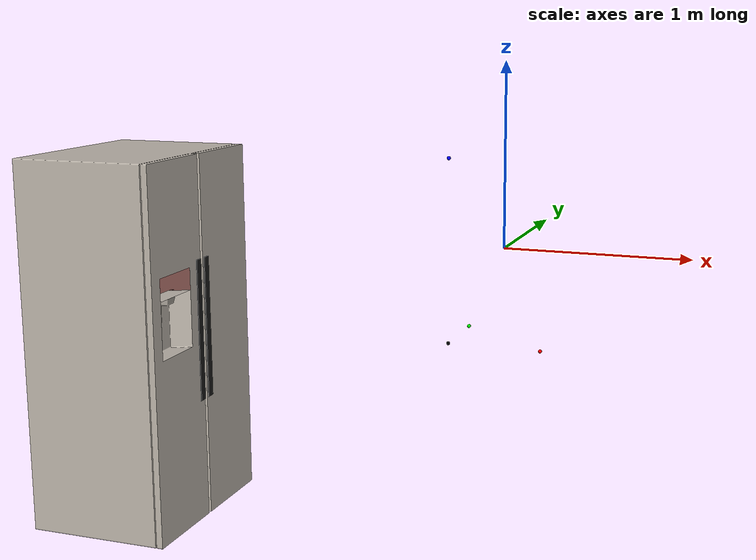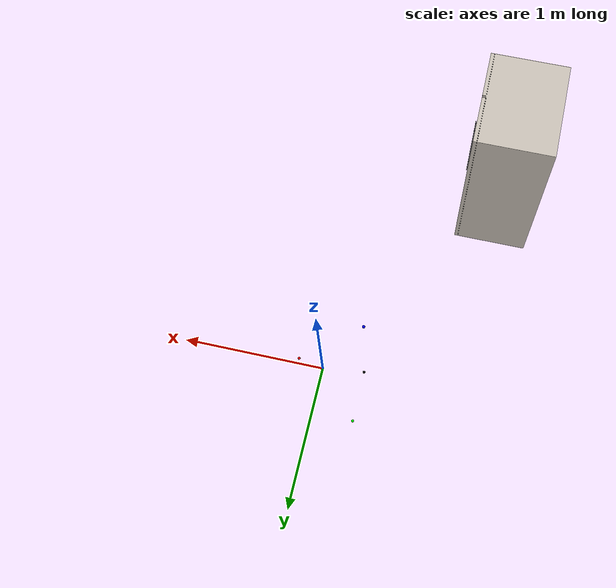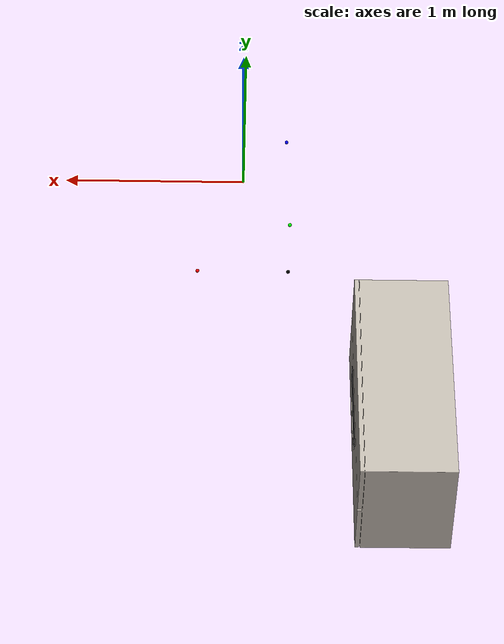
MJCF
<mujoco model="fridge">
  <compiler angle="radian"/>
  <asset>
    <texture file="assets/objects/modern_fridge/visuals/material_0.png" name="fridge-model" type="2d"/>
    <texture type="2d" name="fridge_image5" file="assets/objects/modern_fridge/visuals/image5.png"/>
    <texture type="2d" name="fridge_image0" file="assets/objects/modern_fridge/visuals/image0.png"/>
    <texture type="2d" name="fridge_image2" file="assets/objects/modern_fridge/visuals/image2.png"/>

    <material name="fridge_Control_Panel" texture="fridge_image5" specular="0.5" shininess="0.25"/>
    <material name="fridge_body" texture="fridge_image0" specular="0.5" shininess="0.25"/>
    <material name="fridge_Handles" specular="0.5" shininess="0.25" rgba="0.098898 0.098898 0.098898 1.0"/>
    <material name="fridge_Plastics" texture="fridge_image2" specular="0.5" shininess="0.25"/>

    <mesh file="assets/objects/modern_fridge/visuals/model_0.obj" name="model_0_vis" scale="1.5 1.5 1.5"/>
    <mesh file="assets/objects/modern_fridge/visuals/model_1.obj" name="model_1_vis" scale="1.5 1.5 1.5"/>
    <mesh file="assets/objects/modern_fridge/visuals/model_2.obj" name="model_2_vis" scale="1.5 1.5 1.5"/>
    <mesh file="assets/objects/modern_fridge/visuals/model_3.obj" name="model_3_vis" scale="1.5 1.5 1.5"/>
  </asset>
  <default>
    <default class="visual">
      <geom conaffinity="0" contype="0" group="1" type="mesh"/>
    </default>
    <default class="collision">
      <geom group="0" rgba="0.5 0 0 0.5"/>
    </default>
  </default>
  <worldbody>
    <body>
      <!-- exterior bounding box points -->
      <site rgba="0 0 0 1" size="0.01" pos="-0.2532439640174165 -0.191 -0.49999999999999994" name="ext_p0"/>
      <site rgba="1 0 0 1" size="0.01" pos="0.2532439640174165 -0.191 -0.49999999999999994" name="ext_px"/>
      <site rgba="0 1 0 1" size="0.01" pos="-0.2532439640174165 0.19767553252307624 -0.49999999999999994" name="ext_py"/>
      <site rgba="0 0 1 1" size="0.01" pos="-0.2532439640174165 -0.191 0.49999999999999994" name="ext_pz"/>
      <!-- interior bounding box points -->
      <body name="fridge" pos="-1 -2 -0.05" euler="0 0 1.5708">
        <geom solimp="0.998 0.998 0.001" solref="0.001 1" density="100" friction="0.95 0.3 0.1" type="mesh" mesh="model_0_vis" material="fridge_Handles" class="visual"/>
        <geom solimp="0.998 0.998 0.001" solref="0.001 1" density="100" friction="0.95 0.3 0.1" type="mesh" mesh="model_2_vis" material="fridge_Plastics" class="visual"/>
        <geom solimp="0.998 0.998 0.001" solref="0.001 1" density="100" friction="0.95 0.3 0.1" type="mesh" mesh="model_3_vis" material="fridge_body" class="visual"/>
        <geom class="collision" type="box" pos="0 0.004 0" size="0.2532439640174165 0.195 0.49999999999999994"/>
        <geom class="visual" type="box" pos="-0.14 -0.1855 0.1775" size="0.078 0.005 0.0302" material="fridge_body"/>
      </body>
    </body>
  </worldbody>
</mujoco>
